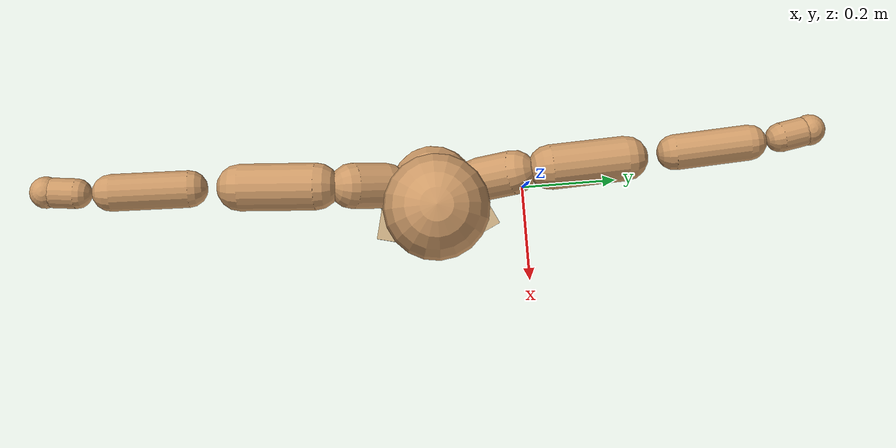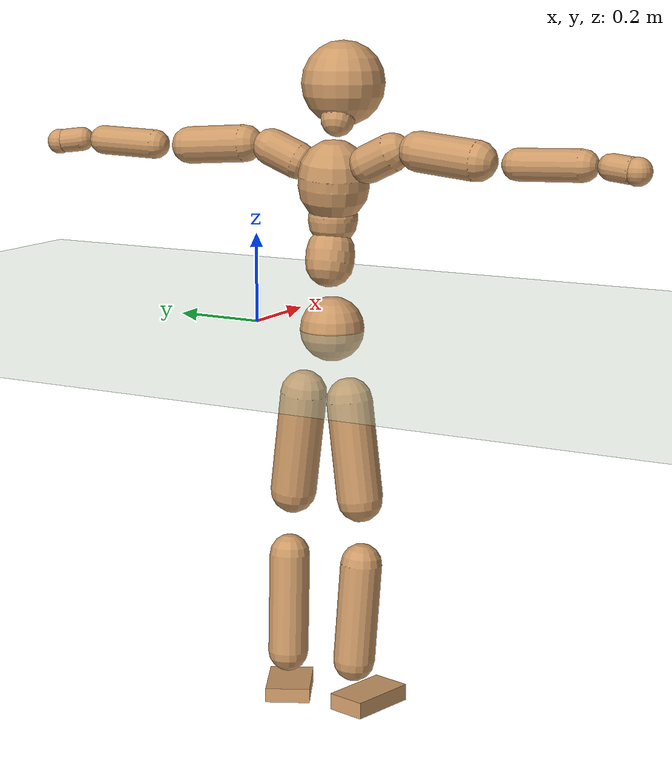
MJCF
<mujoco model="humanoid">
  <compiler coordinate="local" angle="radian"/>
  <default>
    <joint damping="0.0" armature="0.01" stiffness="0.0" limited="true"/>
    <geom conaffinity="1" condim="3" contype="7" margin="0.001" rgba="0.8 0.6 .4 1"/>
  </default>
  <asset>
    <texture type="skybox" builtin="gradient" rgb1=".4 .5 .6" rgb2="0 0 0" width="100" height="100"/>
    <texture builtin="flat" height="1278" mark="cross" markrgb="1 1 1" name="texgeom" random="0.01" rgb1="0.8 0.6 0.4" rgb2="0.8 0.6 0.4" type="cube" width="127"/>
    <texture builtin="checker" height="100" name="texplane" rgb1="0 0 0" rgb2="0.8 0.8 0.8" type="2d" width="100"/>
    <material name="MatPlane" reflectance="0.5" shininess="1" specular="1" texrepeat="60 60" texture="texplane"/>
    <material name="geom" texture="texgeom" texuniform="true"/>
  </asset>
  <worldbody>
    <light cutoff="100" diffuse="1 1 1" dir="-0 0 -1.3" directional="true" exponent="1" pos="0 0 1.3" specular=".1 .1 .1"/>
    <geom conaffinity="1" condim="3" name="floor" pos="0 0 0" rgba="0.8 0.9 0.8 1" size="100 100 .2" type="plane" material="MatPlane"/>
    <body name="Pelvis" pos="0.0002 -0.1944 0.0002">
      <freejoint name="Pelvis"/>
      <geom type="sphere" contype="1" conaffinity="1" density="500" size="0.0721" pos="0.0000 0.0000 0.0000" name="Pelvis"/>
      <body name="L_Hip" pos="-0.0289 0.0473 -0.0709">
        <joint name="L_Hip_x" type="hinge" pos="0 0 0" axis="1 0 0" stiffness="800" damping="80" armature="0.02" range="-180.0000 180.0000"/>
        <joint name="L_Hip_y" type="hinge" pos="0 0 0" axis="0 1 0" stiffness="800" damping="80" armature="0.02" range="-180.0000 180.0000"/>
        <joint name="L_Hip_z" type="hinge" pos="0 0 0" axis="0 0 1" stiffness="800" damping="80" armature="0.02" range="-180.0000 180.0000"/>
        <geom type="capsule" contype="1" conaffinity="1" density="500" fromto="0.0016 0.0100 -0.0764 0.0066 0.0401 -0.3058" size="0.0523" name="L_Hip"/>
        <body name="L_Knee" pos="0.0082 0.0501 -0.3822">
          <joint name="L_Knee_x" type="hinge" pos="0 0 0" axis="1 0 0" stiffness="800" damping="80" armature="0.02" range="-180.0000 180.0000"/>
          <joint name="L_Knee_y" type="hinge" pos="0 0 0" axis="0 1 0" stiffness="800" damping="80" armature="0.02" range="-180.0000 180.0000"/>
          <joint name="L_Knee_z" type="hinge" pos="0 0 0" axis="0 0 1" stiffness="800" damping="80" armature="0.02" range="-180.0000 180.0000"/>
          <geom type="capsule" contype="1" conaffinity="1" density="500" fromto="-0.0057 -0.0017 -0.0759 -0.0229 -0.0068 -0.3035" size="0.0458" name="L_Knee"/>
          <body name="L_Ankle" pos="-0.0286 -0.0084 -0.3794">
            <joint name="L_Ankle_x" type="hinge" pos="0 0 0" axis="1 0 0" stiffness="800" damping="80" armature="0.02" range="-180.0000 180.0000"/>
            <joint name="L_Ankle_y" type="hinge" pos="0 0 0" axis="0 1 0" stiffness="800" damping="80" armature="0.02" range="-180.0000 180.0000"/>
            <joint name="L_Ankle_z" type="hinge" pos="0 0 0" axis="0 0 1" stiffness="800" damping="80" armature="0.02" range="-180.0000 180.0000"/>
            <geom type="box" contype="1" conaffinity="1" density="500" pos="0.0518 0.0250 -0.0273" size="0.0727 0.0507 0.0166" quat="0.9749 0.0000 0.0000 0.2228" name="L_Ankle"/>
            <body name="L_Toe" pos="0.1036 0.05 -0.0546">
              <joint name="L_Toe_x" type="hinge" pos="0 0 0" axis="1 0 0" stiffness="500" damping="50" armature="0.02" range="-180.0000 180.0000"/>
              <joint name="L_Toe_y" type="hinge" pos="0 0 0" axis="0 1 0" stiffness="500" damping="50" armature="0.02" range="-180.0000 180.0000"/>
              <joint name="L_Toe_z" type="hinge" pos="0 0 0" axis="0 0 1" stiffness="500" damping="50" armature="0.02" range="-180.0000 180.0000"/>
              <geom type="box" contype="1" conaffinity="1" density="500" pos="0.0000 0.0000 0.0300" size="0.0009 0.0024 0.001" quat="0.9740 0.0000 0.0000 0.2267" name="L_Toe"/>
            </body>
          </body>
        </body>
      </body>
      <body name="R_Hip" pos="-0.0276 -0.0497 -0.0773">
        <joint name="R_Hip_x" type="hinge" pos="0 0 0" axis="1 0 0" stiffness="800" damping="80" armature="0.02" range="-180.0000 180.0000"/>
        <joint name="R_Hip_y" type="hinge" pos="0 0 0" axis="0 1 0" stiffness="800" damping="80" armature="0.02" range="-180.0000 180.0000"/>
        <joint name="R_Hip_z" type="hinge" pos="0 0 0" axis="0 0 1" stiffness="800" damping="80" armature="0.02" range="-180.0000 180.0000"/>
        <geom type="capsule" contype="1" conaffinity="1" density="500" fromto="-0.0006 -0.0095 -0.0740 -0.0025 -0.0380 -0.2961" size="0.0512" name="R_Hip"/>
        <body name="R_Knee" pos="-0.0031 -0.0475 -0.3702">
          <joint name="R_Knee_x" type="hinge" pos="0 0 0" axis="1 0 0" stiffness="800" damping="80" armature="0.02" range="-180.0000 180.0000"/>
          <joint name="R_Knee_y" type="hinge" pos="0 0 0" axis="0 1 0" stiffness="800" damping="80" armature="0.02" range="-180.0000 180.0000"/>
          <joint name="R_Knee_z" type="hinge" pos="0 0 0" axis="0 0 1" stiffness="800" damping="80" armature="0.02" range="-180.0000 180.0000"/>
          <geom type="capsule" contype="1" conaffinity="1" density="500" fromto="-0.0053 0.0029 -0.0744 -0.0212 0.0115 -0.2976" size="0.0469" name="R_Knee"/>
          <body name="R_Ankle" pos="-0.0265 0.0144 -0.372">
            <joint name="R_Ankle_x" type="hinge" pos="0 0 0" axis="1 0 0" stiffness="800" damping="80" armature="0.02" range="-180.0000 180.0000"/>
            <joint name="R_Ankle_y" type="hinge" pos="0 0 0" axis="0 1 0" stiffness="800" damping="80" armature="0.02" range="-180.0000 180.0000"/>
            <joint name="R_Ankle_z" type="hinge" pos="0 0 0" axis="0 0 1" stiffness="800" damping="80" armature="0.02" range="-180.0000 180.0000"/>
            <geom type="box" contype="1" conaffinity="1" density="500" pos="0.0559 -0.0134 -0.0292" size="0.0793 0.0448 0.0189" quat="0.9931 0.0000 0.0000 -0.1170" name="R_Ankle"/>
            <body name="R_Toe" pos="0.1118 -0.0267 -0.0585">
              <joint name="R_Toe_x" type="hinge" pos="0 0 0" axis="1 0 0" stiffness="500" damping="50" armature="0.02" range="-180.0000 180.0000"/>
              <joint name="R_Toe_y" type="hinge" pos="0 0 0" axis="0 1 0" stiffness="500" damping="50" armature="0.02" range="-180.0000 180.0000"/>
              <joint name="R_Toe_z" type="hinge" pos="0 0 0" axis="0 0 1" stiffness="500" damping="50" armature="0.02" range="-180.0000 180.0000"/>
              <geom type="box" contype="1" conaffinity="1" density="500" pos="0.0000 0.0000 0.0319" size="0.0008 0.0021 0.0011" quat="0.9943 0.0000 0.0000 -0.1067" name="R_Toe"/>
            </body>
          </body>
        </body>
      </body>
      <body name="Torso" pos="-0.0151 0.0037 0.0993">
        <joint name="Torso_x" type="hinge" pos="0 0 0" axis="1 0 0" stiffness="1000" damping="100" armature="0.02" range="-180.0000 180.0000"/>
        <joint name="Torso_y" type="hinge" pos="0 0 0" axis="0 1 0" stiffness="1000" damping="100" armature="0.02" range="-180.0000 180.0000"/>
        <joint name="Torso_z" type="hinge" pos="0 0 0" axis="0 0 1" stiffness="1000" damping="100" armature="0.02" range="-180.0000 180.0000"/>
        <geom type="capsule" contype="1" conaffinity="1" density="500" fromto="0.0176 0.0016 0.0727 0.0117 0.0011 0.0485" size="0.054" name="Torso"/>
        <body name="Spine" pos="0.0293 0.0026 0.1212">
          <joint name="Spine_x" type="hinge" pos="0 0 0" axis="1 0 0" stiffness="1000" damping="100" armature="0.02" range="-180.0000 180.0000"/>
          <joint name="Spine_y" type="hinge" pos="0 0 0" axis="0 1 0" stiffness="1000" damping="100" armature="0.02" range="-180.0000 180.0000"/>
          <joint name="Spine_z" type="hinge" pos="0 0 0" axis="0 0 1" stiffness="1000" damping="100" armature="0.02" range="-180.0000 180.0000"/>
          <geom type="capsule" contype="1" conaffinity="1" density="500" fromto="-0.0003 -0.0008 0.0286 -0.0002 -0.0006 0.0191" size="0.0555" name="Spine"/>
          <body name="Chest" pos="-0.0005 -0.0014 0.0476">
            <joint name="Chest_x" type="hinge" pos="0 0 0" axis="1 0 0" stiffness="1000" damping="100" armature="0.02" range="-180.0000 180.0000"/>
            <joint name="Chest_y" type="hinge" pos="0 0 0" axis="0 1 0" stiffness="1000" damping="100" armature="0.02" range="-180.0000 180.0000"/>
            <joint name="Chest_z" type="hinge" pos="0 0 0" axis="0 0 1" stiffness="1000" damping="100" armature="0.02" range="-180.0000 180.0000"/>
            <geom type="capsule" contype="1" conaffinity="1" density="500" fromto="-0.0074 -0.0054 0.0716 -0.0049 -0.0036 0.0477" size="0.079" name="Chest"/>
            <body name="Neck" pos="-0.0105 -0.0132 0.1739">
              <joint name="Neck_x" type="hinge" pos="0 0 0" axis="1 0 0" stiffness="500" damping="50" armature="0.02" range="-180.0000 180.0000"/>
              <joint name="Neck_y" type="hinge" pos="0 0 0" axis="0 1 0" stiffness="500" damping="50" armature="0.02" range="-180.0000 180.0000"/>
              <joint name="Neck_z" type="hinge" pos="0 0 0" axis="0 0 1" stiffness="500" damping="50" armature="0.02" range="-180.0000 180.0000"/>
              <geom type="capsule" contype="1" conaffinity="1" density="500" fromto="0.0099 0.0019 0.0191 0.0398 0.0077 0.0763" size="0.0377" name="Neck"/>
              <body name="Head" pos="0.0497 0.0096 0.0954">
                <joint name="Head_x" type="hinge" pos="0 0 0" axis="1 0 0" stiffness="500" damping="50" armature="0.02" range="-180.0000 180.0000"/>
                <joint name="Head_y" type="hinge" pos="0 0 0" axis="0 1 0" stiffness="500" damping="50" armature="0.02" range="-180.0000 180.0000"/>
                <joint name="Head_z" type="hinge" pos="0 0 0" axis="0 0 1" stiffness="500" damping="50" armature="0.02" range="-180.0000 180.0000"/>
                <geom type="sphere" contype="1" conaffinity="1" density="500" size="0.0930" pos="0.0000 0.0000 0.0000" name="Head"/>
              </body>
            </body>
            <body name="L_Thorax" pos="-0.0112 0.0609 0.0917">
              <joint name="L_Thorax_x" type="hinge" pos="0 0 0" axis="1 0 0" stiffness="500" damping="50" armature="0.02" range="-180.0000 180.0000"/>
              <joint name="L_Thorax_y" type="hinge" pos="0 0 0" axis="0 1 0" stiffness="500" damping="50" armature="0.02" range="-180.0000 180.0000"/>
              <joint name="L_Thorax_z" type="hinge" pos="0 0 0" axis="0 0 1" stiffness="500" damping="50" armature="0.02" range="-180.0000 180.0000"/>
              <geom type="capsule" contype="1" conaffinity="1" density="500" fromto="-0.0021 0.0209 0.0090 -0.0084 0.0834 0.0360" size="0.0414" name="L_Thorax"/>
              <body name="L_Shoulder" pos="-0.0105 0.1043 0.045">
                <joint name="L_Shoulder_x" type="hinge" pos="0 0 0" axis="1 0 0" stiffness="500" damping="50" armature="0.02" range="-720.0000 720.0000"/>
                <joint name="L_Shoulder_y" type="hinge" pos="0 0 0" axis="0 1 0" stiffness="500" damping="50" armature="0.02" range="-720.0000 720.0000"/>
                <joint name="L_Shoulder_z" type="hinge" pos="0 0 0" axis="0 0 1" stiffness="500" damping="50" armature="0.02" range="-720.0000 720.0000"/>
                <geom type="capsule" contype="1" conaffinity="1" density="500" fromto="-0.0021 0.0465 -0.0033 -0.0082 0.1861 -0.0131" size="0.0418" name="L_Shoulder"/>
                <body name="L_Elbow" pos="-0.0103 0.2326 -0.0164">
                  <joint name="L_Elbow_x" type="hinge" pos="0 0 0" axis="1 0 0" stiffness="500" damping="50" armature="0.02" range="-720.0000 720.0000"/>
                  <joint name="L_Elbow_y" type="hinge" pos="0 0 0" axis="0 1 0" stiffness="500" damping="50" armature="0.02" range="-720.0000 720.0000"/>
                  <joint name="L_Elbow_z" type="hinge" pos="0 0 0" axis="0 0 1" stiffness="500" damping="50" armature="0.02" range="-720.0000 720.0000"/>
                  <geom type="capsule" contype="1" conaffinity="1" density="500" fromto="-0.0024 0.0454 0.0015 -0.0094 0.1814 0.0062" size="0.0331" name="L_Elbow"/>
                  <body name="L_Wrist" pos="-0.0118 0.2268 0.0077">
                    <joint name="L_Wrist_x" type="hinge" pos="0 0 0" axis="1 0 0" stiffness="300" damping="30" armature="0.02" range="-180.0000 180.0000"/>
                    <joint name="L_Wrist_y" type="hinge" pos="0 0 0" axis="0 1 0" stiffness="300" damping="30" armature="0.02" range="-180.0000 180.0000"/>
                    <joint name="L_Wrist_z" type="hinge" pos="0 0 0" axis="0 0 1" stiffness="300" damping="30" armature="0.02" range="-180.0000 180.0000"/>
                    <geom type="capsule" contype="1" conaffinity="1" density="500" fromto="-0.0026 0.0140 -0.0018 -0.0102 0.0562 -0.0071" size="0.0273" name="L_Wrist"/>
                    <body name="L_Hand" pos="-0.0128 0.0702 -0.0088">
                      <joint name="L_Hand_x" type="hinge" pos="0 0 0" axis="1 0 0" stiffness="300" damping="30" armature="0.02" range="-180.0000 180.0000"/>
                      <joint name="L_Hand_y" type="hinge" pos="0 0 0" axis="0 1 0" stiffness="300" damping="30" armature="0.02" range="-180.0000 180.0000"/>
                      <joint name="L_Hand_z" type="hinge" pos="0 0 0" axis="0 0 1" stiffness="300" damping="30" armature="0.02" range="-180.0000 180.0000"/>
                      <geom type="sphere" contype="1" conaffinity="1" density="500" size="0.0288" pos="0.0000 0.0000 0.0000" name="L_Hand"/>
                    </body>
                  </body>
                </body>
              </body>
            </body>
            <body name="R_Thorax" pos="-0.0153 -0.0747 0.0923">
              <joint name="R_Thorax_x" type="hinge" pos="0 0 0" axis="1 0 0" stiffness="500" damping="50" armature="0.02" range="-180.0000 180.0000"/>
              <joint name="R_Thorax_y" type="hinge" pos="0 0 0" axis="0 1 0" stiffness="500" damping="50" armature="0.02" range="-180.0000 180.0000"/>
              <joint name="R_Thorax_z" type="hinge" pos="0 0 0" axis="0 0 1" stiffness="500" damping="50" armature="0.02" range="-180.0000 180.0000"/>
              <geom type="capsule" contype="1" conaffinity="1" density="500" fromto="-0.0005 -0.0196 0.0093 -0.0022 -0.0783 0.0373" size="0.0426" name="R_Thorax"/>
              <body name="R_Shoulder" pos="-0.0027 -0.0979 0.0466">
                <joint name="R_Shoulder_x" type="hinge" pos="0 0 0" axis="1 0 0" stiffness="500" damping="50" armature="0.02" range="-720.0000 720.0000"/>
                <joint name="R_Shoulder_y" type="hinge" pos="0 0 0" axis="0 1 0" stiffness="500" damping="50" armature="0.02" range="-720.0000 720.0000"/>
                <joint name="R_Shoulder_z" type="hinge" pos="0 0 0" axis="0 0 1" stiffness="500" damping="50" armature="0.02" range="-720.0000 720.0000"/>
                <geom type="capsule" contype="1" conaffinity="1" density="500" fromto="-0.0033 -0.0466 -0.0041 -0.0130 -0.1864 -0.0165" size="0.044" name="R_Shoulder"/>
                <body name="R_Elbow" pos="-0.0163 -0.233 -0.0206">
                  <joint name="R_Elbow_x" type="hinge" pos="0 0 0" axis="1 0 0" stiffness="500" damping="50" armature="0.02" range="-720.0000 720.0000"/>
                  <joint name="R_Elbow_y" type="hinge" pos="0 0 0" axis="0 1 0" stiffness="500" damping="50" armature="0.02" range="-720.0000 720.0000"/>
                  <joint name="R_Elbow_z" type="hinge" pos="0 0 0" axis="0 0 1" stiffness="500" damping="50" armature="0.02" range="-720.0000 720.0000"/>
                  <geom type="capsule" contype="1" conaffinity="1" density="500" fromto="-0.0013 -0.0477 0.0018 -0.0050 -0.1908 0.0071" size="0.0345" name="R_Elbow"/>
                  <body name="R_Wrist" pos="-0.0063 -0.2385 0.0089">
                    <joint name="R_Wrist_x" type="hinge" pos="0 0 0" axis="1 0 0" stiffness="300" damping="30" armature="0.02" range="-180.0000 180.0000"/>
                    <joint name="R_Wrist_y" type="hinge" pos="0 0 0" axis="0 1 0" stiffness="300" damping="30" armature="0.02" range="-180.0000 180.0000"/>
                    <joint name="R_Wrist_z" type="hinge" pos="0 0 0" axis="0 0 1" stiffness="300" damping="30" armature="0.02" range="-180.0000 180.0000"/>
                    <geom type="capsule" contype="1" conaffinity="1" density="500" fromto="-0.0018 -0.0146 -0.0014 -0.0070 -0.0585 -0.0055" size="0.0282" name="R_Wrist"/>
                    <body name="R_Hand" pos="-0.0088 -0.0731 -0.0069">
                      <joint name="R_Hand_x" type="hinge" pos="0 0 0" axis="1 0 0" stiffness="300" damping="30" armature="0.02" range="-180.0000 180.0000"/>
                      <joint name="R_Hand_y" type="hinge" pos="0 0 0" axis="0 1 0" stiffness="300" damping="30" armature="0.02" range="-180.0000 180.0000"/>
                      <joint name="R_Hand_z" type="hinge" pos="0 0 0" axis="0 0 1" stiffness="300" damping="30" armature="0.02" range="-180.0000 180.0000"/>
                      <geom type="sphere" contype="1" conaffinity="1" density="500" size="0.0297" pos="0.0000 0.0000 0.0000" name="R_Hand"/>
                    </body>
                  </body>
                </body>
              </body>
            </body>
          </body>
        </body>
      </body>
    </body>
  </worldbody>
  <actuator>
    <motor name="L_Hip_x" joint="L_Hip_x" gear="500"/>
    <motor name="L_Hip_y" joint="L_Hip_y" gear="500"/>
    <motor name="L_Hip_z" joint="L_Hip_z" gear="500"/>
    <motor name="L_Knee_x" joint="L_Knee_x" gear="500"/>
    <motor name="L_Knee_y" joint="L_Knee_y" gear="500"/>
    <motor name="L_Knee_z" joint="L_Knee_z" gear="500"/>
    <motor name="L_Ankle_x" joint="L_Ankle_x" gear="500"/>
    <motor name="L_Ankle_y" joint="L_Ankle_y" gear="500"/>
    <motor name="L_Ankle_z" joint="L_Ankle_z" gear="500"/>
    <motor name="L_Toe_x" joint="L_Toe_x" gear="500"/>
    <motor name="L_Toe_y" joint="L_Toe_y" gear="500"/>
    <motor name="L_Toe_z" joint="L_Toe_z" gear="500"/>
    <motor name="R_Hip_x" joint="R_Hip_x" gear="500"/>
    <motor name="R_Hip_y" joint="R_Hip_y" gear="500"/>
    <motor name="R_Hip_z" joint="R_Hip_z" gear="500"/>
    <motor name="R_Knee_x" joint="R_Knee_x" gear="500"/>
    <motor name="R_Knee_y" joint="R_Knee_y" gear="500"/>
    <motor name="R_Knee_z" joint="R_Knee_z" gear="500"/>
    <motor name="R_Ankle_x" joint="R_Ankle_x" gear="500"/>
    <motor name="R_Ankle_y" joint="R_Ankle_y" gear="500"/>
    <motor name="R_Ankle_z" joint="R_Ankle_z" gear="500"/>
    <motor name="R_Toe_x" joint="R_Toe_x" gear="500"/>
    <motor name="R_Toe_y" joint="R_Toe_y" gear="500"/>
    <motor name="R_Toe_z" joint="R_Toe_z" gear="500"/>
    <motor name="Torso_x" joint="Torso_x" gear="500"/>
    <motor name="Torso_y" joint="Torso_y" gear="500"/>
    <motor name="Torso_z" joint="Torso_z" gear="500"/>
    <motor name="Spine_x" joint="Spine_x" gear="500"/>
    <motor name="Spine_y" joint="Spine_y" gear="500"/>
    <motor name="Spine_z" joint="Spine_z" gear="500"/>
    <motor name="Chest_x" joint="Chest_x" gear="500"/>
    <motor name="Chest_y" joint="Chest_y" gear="500"/>
    <motor name="Chest_z" joint="Chest_z" gear="500"/>
    <motor name="Neck_x" joint="Neck_x" gear="500"/>
    <motor name="Neck_y" joint="Neck_y" gear="500"/>
    <motor name="Neck_z" joint="Neck_z" gear="500"/>
    <motor name="Head_x" joint="Head_x" gear="500"/>
    <motor name="Head_y" joint="Head_y" gear="500"/>
    <motor name="Head_z" joint="Head_z" gear="500"/>
    <motor name="L_Thorax_x" joint="L_Thorax_x" gear="500"/>
    <motor name="L_Thorax_y" joint="L_Thorax_y" gear="500"/>
    <motor name="L_Thorax_z" joint="L_Thorax_z" gear="500"/>
    <motor name="L_Shoulder_x" joint="L_Shoulder_x" gear="500"/>
    <motor name="L_Shoulder_y" joint="L_Shoulder_y" gear="500"/>
    <motor name="L_Shoulder_z" joint="L_Shoulder_z" gear="500"/>
    <motor name="L_Elbow_x" joint="L_Elbow_x" gear="500"/>
    <motor name="L_Elbow_y" joint="L_Elbow_y" gear="500"/>
    <motor name="L_Elbow_z" joint="L_Elbow_z" gear="500"/>
    <motor name="L_Wrist_x" joint="L_Wrist_x" gear="500"/>
    <motor name="L_Wrist_y" joint="L_Wrist_y" gear="500"/>
    <motor name="L_Wrist_z" joint="L_Wrist_z" gear="500"/>
    <motor name="L_Hand_x" joint="L_Hand_x" gear="500"/>
    <motor name="L_Hand_y" joint="L_Hand_y" gear="500"/>
    <motor name="L_Hand_z" joint="L_Hand_z" gear="500"/>
    <motor name="R_Thorax_x" joint="R_Thorax_x" gear="500"/>
    <motor name="R_Thorax_y" joint="R_Thorax_y" gear="500"/>
    <motor name="R_Thorax_z" joint="R_Thorax_z" gear="500"/>
    <motor name="R_Shoulder_x" joint="R_Shoulder_x" gear="500"/>
    <motor name="R_Shoulder_y" joint="R_Shoulder_y" gear="500"/>
    <motor name="R_Shoulder_z" joint="R_Shoulder_z" gear="500"/>
    <motor name="R_Elbow_x" joint="R_Elbow_x" gear="500"/>
    <motor name="R_Elbow_y" joint="R_Elbow_y" gear="500"/>
    <motor name="R_Elbow_z" joint="R_Elbow_z" gear="500"/>
    <motor name="R_Wrist_x" joint="R_Wrist_x" gear="500"/>
    <motor name="R_Wrist_y" joint="R_Wrist_y" gear="500"/>
    <motor name="R_Wrist_z" joint="R_Wrist_z" gear="500"/>
    <motor name="R_Hand_x" joint="R_Hand_x" gear="500"/>
    <motor name="R_Hand_y" joint="R_Hand_y" gear="500"/>
    <motor name="R_Hand_z" joint="R_Hand_z" gear="500"/>
  </actuator>
  <contact>
    <exclude body1="Torso" body2="Chest"/>
    <exclude body1="Head" body2="Chest"/>
    <exclude body1="R_Knee" body2="R_Toe"/>
    <exclude body1="R_Knee" body2="L_Ankle"/>
    <exclude body1="R_Knee" body2="L_Toe"/>
    <exclude body1="L_Knee" body2="L_Toe"/>
    <exclude body1="L_Knee" body2="R_Ankle"/>
    <exclude body1="L_Knee" body2="R_Toe"/>
    <exclude body1="L_Shoulder" body2="Chest"/>
    <exclude body1="R_Shoulder" body2="Chest"/>
  </contact>
  <sensor/>
  <size njmax="700" nconmax="700"/>
</mujoco>
